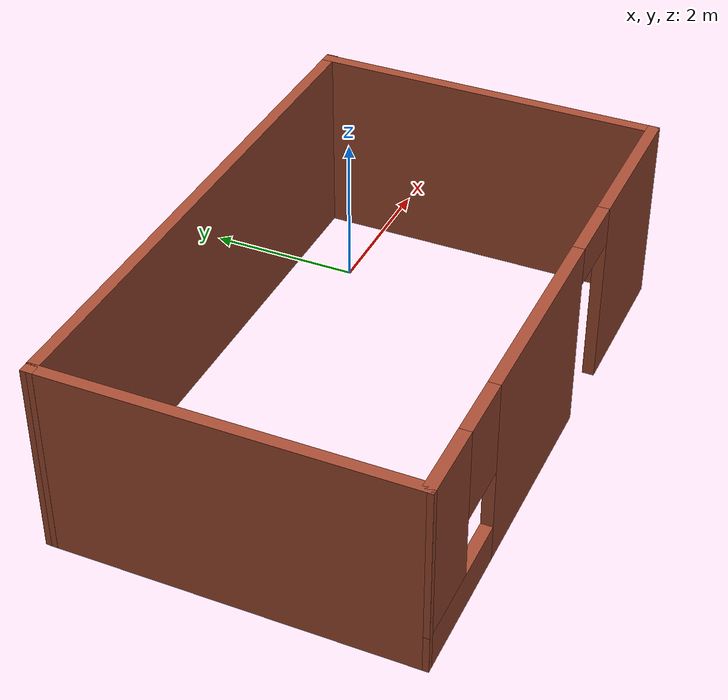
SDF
<?xml version='1.0'?>
<sdf version='1.7'>
  <model name='house'>
    <pose>-2.41752 -1.39891 0 0 -0 0</pose>
    <link name='Wall_0'>
      <collision name='Wall_0_Collision'>
        <geometry>
          <box>
            <size>7.4064 0.15 2.5</size>
          </box>
        </geometry>
        <pose>0 0 1.25 0 -0 0</pose>
      </collision>
      <visual name='Wall_0_Visual'>
        <pose>0 0 1.25 0 -0 0</pose>
        <geometry>
          <box>
            <size>7.4064 0.15 2.5</size>
          </box>
        </geometry>
        <material>
          <script>
            <uri>file://media/materials/scripts/gazebo.material</uri>
            <name>Gazebo/Bricks</name>
          </script>
          <ambient>1 1 1 1</ambient>
        </material>
        <meta>
          <layer>0</layer>
        </meta>
      </visual>
      <pose>0.000184 2.23723 0 0 -0 -0.000872</pose>
    </link>
    <link name='Wall_1'>
      <collision name='Wall_1_Collision'>
        <geometry>
          <box>
            <size>4.60606 0.15 2.5</size>
          </box>
        </geometry>
        <pose>0 0 1.25 0 -0 0</pose>
      </collision>
      <visual name='Wall_1_Visual'>
        <pose>0 0 1.25 0 -0 0</pose>
        <geometry>
          <box>
            <size>4.60606 0.15 2.5</size>
          </box>
        </geometry>
        <material>
          <script>
            <uri>file://media/materials/scripts/gazebo.material</uri>
            <name>Gazebo/Bricks</name>
          </script>
          <ambient>1 1 1 1</ambient>
        </material>
        <meta>
          <layer>0</layer>
        </meta>
      </visual>
      <pose>3.61802 0.006037 0 0 -0 -1.57028</pose>
    </link>
    <link name='Wall_2'>
      <pose>0.008538 -2.23694 0 0 -0 -3.14064</pose>
      <visual name='Wall_2_Visual_0'>
        <pose>-2.67704 0 1.25 0 -0 0</pose>
        <geometry>
          <box>
            <size>2.01718 0.15 2.5</size>
          </box>
        </geometry>
        <material>
          <script>
            <uri>file://media/materials/scripts/gazebo.material</uri>
            <name>Gazebo/Bricks</name>
          </script>
          <ambient>1 1 1 1</ambient>
        </material>
        <meta>
          <layer>0</layer>
        </meta>
      </visual>
      <collision name='Wall_2_Collision_0'>
        <geometry>
          <box>
            <size>2.01718 0.15 2.5</size>
          </box>
        </geometry>
        <pose>-2.67704 0 1.25 0 -0 0</pose>
      </collision>
      <visual name='Wall_2_Visual_1'>
        <pose>0.561996 0 1.25 0 -0 0</pose>
        <geometry>
          <box>
            <size>2.6609 0.15 2.5</size>
          </box>
        </geometry>
        <material>
          <script>
            <uri>file://media/materials/scripts/gazebo.material</uri>
            <name>Gazebo/Bricks</name>
          </script>
          <ambient>1 1 1 1</ambient>
        </material>
        <meta>
          <layer>0</layer>
        </meta>
      </visual>
      <collision name='Wall_2_Collision_1'>
        <geometry>
          <box>
            <size>2.6609 0.15 2.5</size>
          </box>
        </geometry>
        <pose>0.561996 0 1.25 0 -0 0</pose>
      </collision>
      <visual name='Wall_2_Visual_2'>
        <pose>2.78904 0 0.25 0 -0 0</pose>
        <geometry>
          <box>
            <size>1.79319 0.15 0.5</size>
          </box>
        </geometry>
        <material>
          <script>
            <uri>file://media/materials/scripts/gazebo.material</uri>
            <name>Gazebo/Bricks</name>
          </script>
          <ambient>1 1 1 1</ambient>
        </material>
        <meta>
          <layer>0</layer>
        </meta>
      </visual>
      <collision name='Wall_2_Collision_2'>
        <geometry>
          <box>
            <size>1.79319 0.15 0.5</size>
          </box>
        </geometry>
        <pose>2.78904 0 0.25 0 -0 0</pose>
      </collision>
      <visual name='Wall_2_Visual_3'>
        <pose>3.18904 0 1.5 0 -0 0</pose>
        <geometry>
          <box>
            <size>0.993185 0.15 2</size>
          </box>
        </geometry>
        <material>
          <script>
            <uri>file://media/materials/scripts/gazebo.material</uri>
            <name>Gazebo/Bricks</name>
          </script>
          <ambient>1 1 1 1</ambient>
        </material>
        <meta>
          <layer>0</layer>
        </meta>
      </visual>
      <collision name='Wall_2_Collision_3'>
        <geometry>
          <box>
            <size>0.993185 0.15 2</size>
          </box>
        </geometry>
        <pose>3.18904 0 1.5 0 -0 0</pose>
      </collision>
      <visual name='Wall_2_Visual_4'>
        <pose>2.29244 0 1.9 0 -0 0</pose>
        <geometry>
          <box>
            <size>0.8 0.15 1.2</size>
          </box>
        </geometry>
        <material>
          <script>
            <uri>file://media/materials/scripts/gazebo.material</uri>
            <name>Gazebo/Bricks</name>
          </script>
          <ambient>1 1 1 1</ambient>
        </material>
        <meta>
          <layer>0</layer>
        </meta>
      </visual>
      <collision name='Wall_2_Collision_4'>
        <geometry>
          <box>
            <size>0.8 0.15 1.2</size>
          </box>
        </geometry>
        <pose>2.29244 0 1.9 0 -0 0</pose>
      </collision>
      <visual name='Wall_2_Visual_5'>
        <pose>-1.21845 0 2.25 0 -0 0</pose>
        <geometry>
          <box>
            <size>0.9 0.15 0.5</size>
          </box>
        </geometry>
        <material>
          <script>
            <uri>file://media/materials/scripts/gazebo.material</uri>
            <name>Gazebo/Bricks</name>
          </script>
          <ambient>1 1 1 1</ambient>
        </material>
        <meta>
          <layer>0</layer>
        </meta>
      </visual>
      <collision name='Wall_2_Collision_5'>
        <geometry>
          <box>
            <size>0.9 0.15 0.5</size>
          </box>
        </geometry>
        <pose>-1.21845 0 2.25 0 -0 0</pose>
      </collision>
    </link>
    <link name='Wall_5'>
      <collision name='Wall_5_Collision'>
        <geometry>
          <box>
            <size>4.63086 0.15 2.5</size>
          </box>
        </geometry>
        <pose>0 0 1.25 0 -0 0</pose>
      </collision>
      <visual name='Wall_5_Visual'>
        <pose>0 0 1.25 0 -0 0</pose>
        <geometry>
          <box>
            <size>4.63086 0.15 2.5</size>
          </box>
        </geometry>
        <material>
          <script>
            <uri>file://media/materials/scripts/gazebo.material</uri>
            <name>Gazebo/Bricks</name>
          </script>
          <ambient>1 1 1 1</ambient>
        </material>
        <meta>
          <layer>0</layer>
        </meta>
      </visual>
      <pose>-3.61505 0 0 0 -0 1.57658</pose>
    </link>
    <static>1</static>
  </model>
</sdf>
